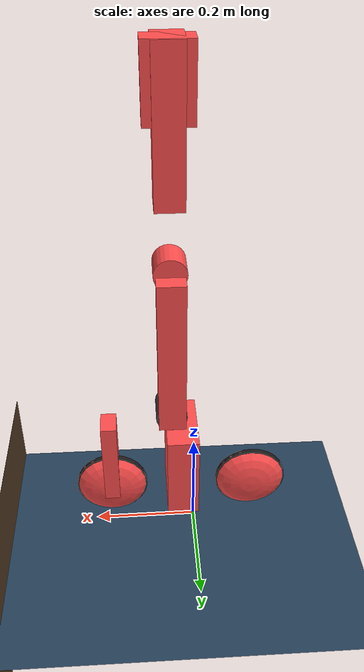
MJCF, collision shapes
<mujoco model="orange_bike">
  <compiler angle="radian" meshdir="/home/qy/DVGC/assets/meshes" inertiafromgeom="false" />

  <option timestep="0.001" tolerance="1e-10" integrator="RK4" cone="elliptic" iterations="50" />

  <size nkey="1" />

  <visual>
    <global azimuth="-90" elevation="-20" offwidth="1920" offheight="1080" />
    <headlight diffuse="0.6 0.6 0.6" specular="0.9 0.9 0.9" />
    <rgba haze="0.15 0.25 0.35 1" />
  </visual>

  <default>
    <default class="collision">
      <geom group="1" density="0" rgba="1 0.3 0.3 0.5" />
      <default class="collision_wheel">
        <geom size="0.07 0.07 0.025" type="ellipsoid" priority="1" solref="0.02 0.5" solimp="0" />
      </default>
    </default>
    <default class="visual">
      <geom contype="0" conaffinity="0" group="2" density="0" />
    </default>
    <default class="inertial">
      <geom contype="0" conaffinity="0" group="2" rgba="0.3 1 0.3 0" />
      <default class="inertial_wheel">
        <geom size="0.07 0.005 0" type="cylinder" />
      </default>
    </default>
  </default>

  <asset>
    <texture type="skybox" colorspace="auto" name="sky" builtin="flat" rgb1="0.3 0.5 0.7" rgb2="0 0 0" width="512" height="3072" />
    <texture type="2d" colorspace="auto" name="groundplane" builtin="checker" mark="edge" rgb1="0.2 0.3 0.4" rgb2="0.1 0.2 0.3" markrgb="0.8 0.8 0.8" width="300" height="300" />
    <texture type="2d" colorspace="auto" name="rampplane" builtin="checker" mark="edge" rgb1="0.4 0.3 0.2" rgb2="0.3 0.2 0.1" markrgb="0.8 0.8 0.8" width="512" height="512" />
    <material name="groundplane" texture="groundplane" texuniform="true" texrepeat="5 5" reflectance="0.2" />
    <material name="rampplane" texture="rampplane" texuniform="true" texrepeat="5 5" reflectance="0.2" />
    <mesh name="base_link" content_type="model/stl" file="base_link.STL" />
    <mesh name="frontwheel" content_type="model/stl" file="frontwheel.STL" />
    <mesh name="rearwheel" content_type="model/stl" file="rearwheel.STL" />
    <mesh name="steer" content_type="model/stl" file="steer.STL" />
    <mesh name="downarm" content_type="model/stl" file="downarm.STL" />
    <mesh name="uparm" content_type="model/stl" file="uparm.STL" />
  </asset>

  <worldbody>
    <geom name="floor" size="0 0 0.25" type="plane" conaffinity="15" material="groundplane" />
    <geom name="step" size="2 1 0.16" pos="5.6 0 0" type="box" conaffinity="15" material="rampplane" />
    <light pos="1 0 2.5" dir="0 0 -1" type="directional" />
    <body name="base_link" pos="0 0 0.15">
      <joint name="floating_base_joint" type="free" />
      <geom class="visual" type="mesh" rgba="0.3 0.3 0.3 1" mesh="base_link" />
      <geom name="base_collision" class="collision" size="0.03 0.065 0.09" pos="0.025 0 0.015" type="box" contype="2" conaffinity="3" />
      <geom name="chasis" class="inertial" size="0.05 0.045 0.09" pos="0.025 0 0.015" type="box" mass="0.81" />
      <geom name="steer_motor" class="inertial" size="0.027 0.022" pos="0.16455 -0.00020771 0.111216" type="cylinder" mass="0.23" />
      <geom name="rear_motor" class="inertial" size="0.024 0.028" pos="-0.11448 -0.0050771 -0.049045" quat="0.707107 -0.707107 0 0" type="cylinder" mass="0.26" />
      <geom name="hip_motor" class="inertial" size="0.029 0.028" pos="0.044499 0.000292 0.13903" quat="0.707107 -0.707107 0 0" type="cylinder" mass="0.46" rgba="0.3 0.3 0.3 1" />
      <site name="imu_site" pos="0 0 0" rgba="0.5 0.5 0.5 0" />
      <camera name="chasis_camera" pos="0 -1.5 0.3" quat="0.707388 0.706825 0 0" mode="track" />
      <body name="rearwheel" pos="-0.11448 -0.00020771 -0.049045" quat="0.7071 -0.707102 -0.00285946 -0.00285947">
        <joint name="rearwheel_joint" pos="0 0 0" axis="0 0 1" />
        <geom class="visual" size="0.07 0.005" type="cylinder" priority="1" solref="0.02 0.5" rgba="0.1 0.1 0.1 1" />
        <geom name="rearwheel_collision" class="collision_wheel" contype="2" />
        <geom class="inertial_wheel" mass="0.17" />
      <inertial mass="0.17" pos="0.0 0.0 0.0" quat="1.0 0.0 0.0 0.0" diaginertia="0.0002096666666666667 0.0002096666666666667 0.00041650000000000015" /></body>
      <body name="steer" pos="0.16455 -0.00020771 0.071216">
        <joint name="steering_joint" pos="0 0 0" axis="0 0 1" limited="true" range="-0.8 0.8" />
        <geom class="visual" type="mesh" rgba="0.3 1 0.3 1" mesh="steer" />
        <geom name="steer_collision" class="collision" size="0.015 0.025 0.09" pos="0 0 -0.05" type="box" contype="2" conaffinity="3" />
        <geom class="inertial" size="0.015 0.025 0.09" pos="0 0 -0.03" type="box" mass="0.001" />
        <body name="frontwheel" pos="0 0 -0.12" quat="0.706534 -0.706536 -0.0284268 -0.0284269">
          <joint name="frontwheel_joint" pos="0 0 0" axis="0 0 1" />
          <geom class="visual" size="0.07 0.005" type="cylinder" priority="1" solref="0.02 0.5" rgba="0.1 0.1 0.1 1" />
          <geom name="frontwheel_collision" class="collision_wheel" contype="2" />
          <geom class="inertial_wheel" mass="0.13" />
        <inertial mass="0.13" pos="0.0 0.0 0.0" quat="1.0 0.0 0.0 0.0" diaginertia="0.00016033333333333337 0.00016033333333333337 0.00031850000000000004" /></body>
      <inertial mass="0.001" pos="0.0 0.0 -0.03" quat="1.0 0.0 0.0 0.0" diaginertia="2.9083333333333336e-06 2.7749999999999997e-06 2.8333333333333336e-07" /></body>
      <body name="downarm" pos="0.044499 0.025292 0.13903">
        <joint name="hip_joint" pos="0 0 0" axis="0 1 0" limited="true" range="-1.3 0.5" />
        <geom class="visual" type="mesh" rgba="0.0392157 0.490196 0.709804 1" mesh="downarm" />
        <geom name="downarm_collision" class="collision" size="0.025 0.015 0.15" pos="0 0.02 0.15" type="box" contype="4" conaffinity="7" />
        <geom name="knee_motor_collision" class="collision" size="0.029 0.028" pos="0 -0.028 0.3" quat="0.707107 -0.707107 0 0" type="cylinder" contype="4" conaffinity="7" />
        <geom name="downarm_inertial" class="inertial" type="mesh" mass="0.26" mesh="downarm" />
        <geom name="knee_motor" class="inertial" size="0.029 0.028" pos="0 -0.028 0.3" quat="0.707107 -0.707107 0 0" type="cylinder" mass="0.46" rgba="0.3 0.3 0.3 1" />
        <body name="uparm" pos="0 -0.05955 0.41" quat="0 0 1 0">
          <joint name="knee_joint" pos="0 0 0.11" axis="0 1 0" limited="true" range="-1.5 2.5" />
          <geom class="visual" type="mesh" rgba="0.647059 0.619608 0.588235 1" mesh="uparm" />
          <geom name="uparm_collision" class="collision" size="0.025 0.03 0.125" pos="0 0.03 -0.125" type="box" contype="4" conaffinity="7" />
          <geom name="uparm_inertial" class="inertial" type="mesh" mass="0.31" mesh="uparm" />
          <geom name="load" class="inertial" size="0.04 0.0205 0.06" pos="0 0.035 -0.19" type="box" mass="2" rgba="1 0.3 0.3 1" />
        <inertial mass="2.31" pos="7.580342478103272e-08 0.03347395427226586 -0.18173979637357773" quat="0.7061091698529403 0.03752609773468134 -0.03752380002214491 0.706111603551661" diaginertia="0.005954945528869052 0.005248398141832493 0.0015768076081977623" /></body>
      <inertial mass="0.72" pos="7.80614761153499e-08 -0.015104719905965866 0.2552109481267508" quat="0.9944754541347035 0.10496938183216625 -1.1546814280362542e-06 -1.2187952473850698e-07" diaginertia="0.005291960270325852 0.005170558880589957 0.0003556770723592142" /></body>
    <inertial mass="1.76" pos="0.02772797727272728 -0.000700851875 0.05052942045454545" quat="0.6477059188416672 0.2689656960344688 0.27590980165234047 0.6572733665730983" diaginertia="0.020962292039510787 0.017614920913719988 0.004905748867161521" /></body>
  </worldbody>

  <contact>
    <pair geom1="floor" geom2="base_collision" condim="6" friction="1 0.005 0.0001 0.0001 0.0001" />
    <pair geom1="step" geom2="base_collision" condim="6" friction="1 0.005 0.0001 0.0001 0.0001" />
    <pair geom1="floor" geom2="rearwheel_collision" condim="6" solref="0.008" solimp="0.99 0.99" friction="5 0.5 0.0001 0.0001 0.0001" />
    <pair geom1="step" geom2="rearwheel_collision" condim="6" solref="0.008" solimp="0.99 0.99" friction="5 0.5 0.0001 0.0001 0.0001" />
    <pair geom1="floor" geom2="frontwheel_collision" condim="6" solref="0.008" solimp="0.99 0.99" friction="5 0.5 0.0001 0.0001 0.0001" />
    <pair geom1="step" geom2="frontwheel_collision" condim="6" solref="0.008" solimp="0.99 0.99" friction="5 0.5 0.0001 0.0001 0.0001" />
    <pair geom1="step" geom2="downarm_collision" condim="6" friction="0.8 0.1 0.1 0.0001 0.0001" />
    <pair geom1="step" geom2="uparm_collision" condim="6" friction="0.8 0.1 0.1 0.0001 0.0001" />
    <pair geom1="base_collision" geom2="steer_collision" condim="6" friction="0.5 0.1 0.1 0.0001 0.0001" />
    <pair geom1="base_collision" geom2="downarm_collision" condim="6" friction="0.5 0.1 0.1 0.0001 0.0001" />
    <pair geom1="base_collision" geom2="uparm_collision" condim="6" friction="0.5 0.1 0.1 0.0001 0.0001" />
    <exclude body1="base_link" body2="steer" />
    <exclude body1="downarm" body2="uparm" />
  </contact>

  <actuator>
    <general name="cmd_steering_v" joint="steering_joint" ctrllimited="true" ctrlrange="-0.8 0.8" forcerange="-5 5" biastype="affine" gainprm="10" biasprm="0 -10 -0.1" />
    <general name="cmd_rearwheel_f" joint="rearwheel_joint" ctrllimited="true" ctrlrange="-5 40" forcerange="-6 6" biastype="affine" gainprm="5" biasprm="0 0 -5" />
    <general name="cmd_hip_f" joint="hip_joint" group="2" ctrllimited="true" ctrlrange="-1.3 0.5" forcerange="-30 30" biastype="affine" gainprm="100" biasprm="0 -100 -6" />
    <general name="cmd_knee_f" joint="knee_joint" group="2" ctrllimited="true" ctrlrange="-1.5 2.5" forcerange="-30 30" biastype="affine" gainprm="100" biasprm="0 -100 -6" />
  </actuator>

  <sensor>
    <jointpos joint="steering_joint" name="steering_joint_pos_sensor" />
    <jointvel joint="steering_joint" name="steering_joint_vel_sensor" />
    <jointvel joint="rearwheel_joint" name="rearwheel_joint_vel_sensor" />
    <jointvel joint="frontwheel_joint" name="frontwheel_joint_vel_sensor" />
    <accelerometer site="imu_site" name="acc_local" />
    <gyro site="imu_site" name="gyro_local" />
    <framequat objtype="site" objname="imu_site" name="ori_global" />
    <framepos objtype="site" objname="imu_site" name="pos_global" />
    <framelinvel objtype="site" objname="imu_site" name="vel_global" />
    <frameangvel objtype="site" objname="imu_site" name="ang_global" />
    <jointpos joint="hip_joint" name="hip_joint_pos_sensor" />
    <jointpos joint="knee_joint" name="knee_joint_pos_sensor" />
    <jointvel joint="hip_joint" name="hip_joint_vel_sensor" />
    <jointvel joint="knee_joint" name="knee_joint_vel_sensor" />

    <actuatorfrc actuator="cmd_steering_v" name="cmd_steering_v" />

    <actuatorfrc actuator="cmd_rearwheel_f" name="cmd_rearwheel_f" />

    <actuatorfrc actuator="cmd_hip_f" name="cmd_hip_f" />

    <actuatorfrc actuator="cmd_knee_f" name="cmd_knee_f" />
  </sensor>

  <keyframe>
    <key name="initial_state" qpos="1.5 0 0.15 1 0 0 0 0 0 0 -1.2 2.5" />
  </keyframe>
</mujoco>
